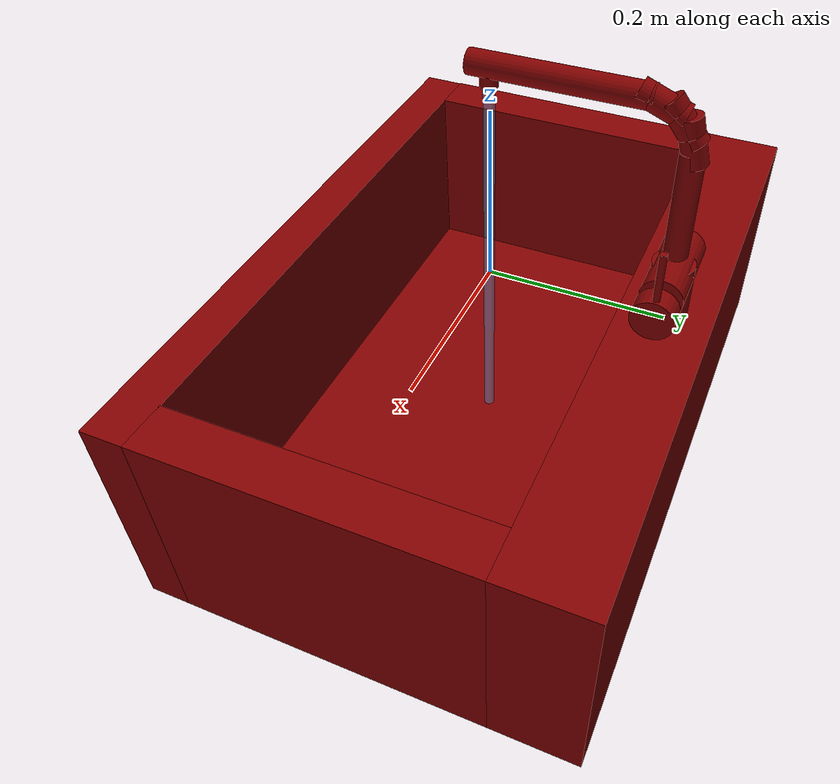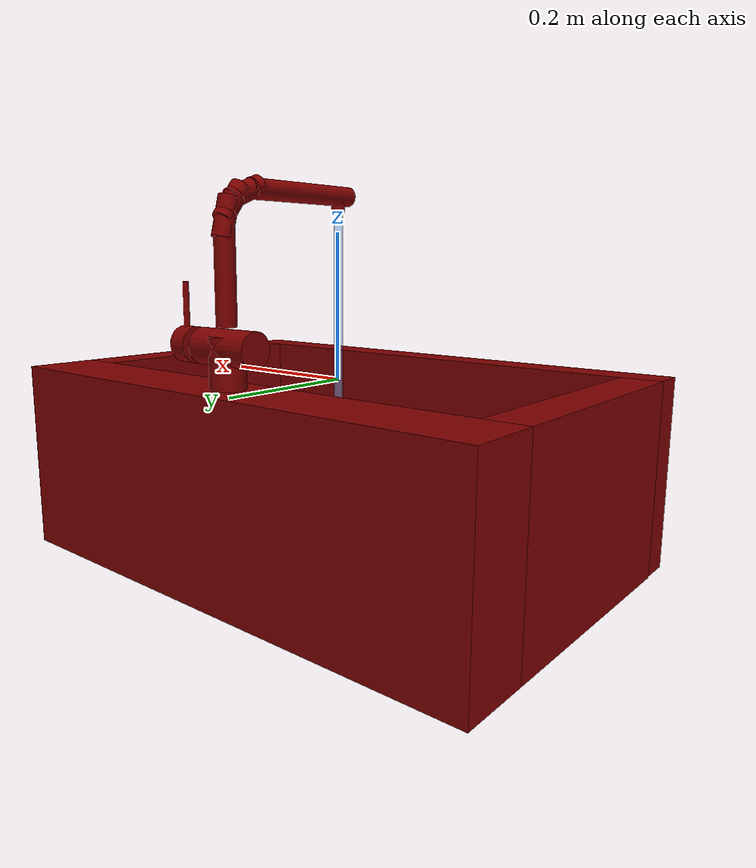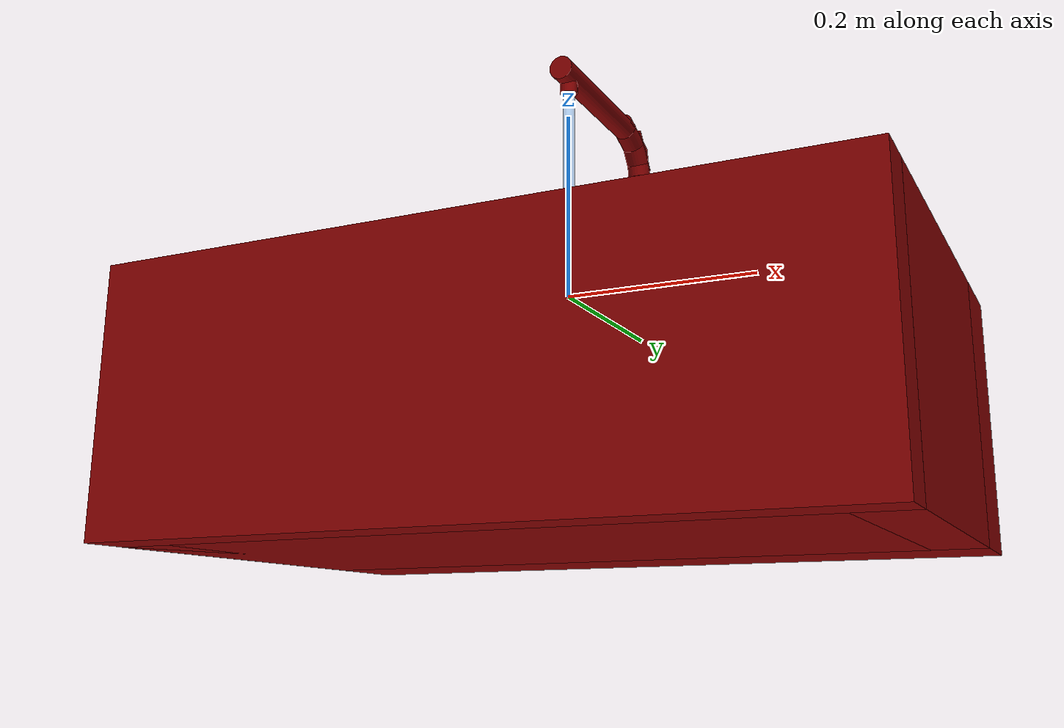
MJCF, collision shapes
<?xml version='1.0' encoding='UTF-8'?>
<mujoco model="model">
  <option timestep="0.002" gravity="0.0 0.0 -9.81"/>
  <compiler angle="radian"/>
  <asset>
    <mesh file="visuals/handle.obj" name="handle_vis"/>
    <mesh file="visuals/Body001.obj" name="Body001_vis"/>
    <mesh file="visuals/spout.obj" name="spout_vis"/>
    <texture file="visuals/T_BC001.png" name="Body001_material" type="2d"/>
    <material name="Body001_material" rgba="1 1 1 1.0" texture="Body001_material" shininess="0.4472135901451111" specular="1"/>
    <texture file="visuals/T_BC001.png" name="handle_material" type="2d"/>
    <material name="handle_material" rgba="1 1 1 1.0" texture="handle_material" shininess="0.4472135901451111" specular="1"/>
    <texture file="visuals/T_BC001.png" name="spout_material" type="2d"/>
    <material name="spout_material" rgba="1 1 1 1.0" texture="spout_material" shininess="0.4472135901451111" specular="1"/>
  </asset>
  <default>
    <default class="visual">
      <geom conaffinity="0" contype="0" group="1" type="mesh"/>
    </default>
    <default class="collision">
      <geom group="0" rgba="0.5 0 0 0.5" solimp="0.998 0.998 0.001" solref="0.001 2"/>
    </default>
    <default class="spawn">
      <geom group="0" rgba="1 1 1 0.5" contype="0" conaffinity="0"/>
      <site group="0" rgba="1 1 1 0.5"/>
    </default>
    <default class="region">
      <geom group="1" conaffinity="0" contype="0" rgba="0 1 0 0"/>
    </default>
  </default>
  <worldbody>
    <body>
      <body name="object">
        <geom mesh="Body001_vis" type="mesh" solimp="0.998 0.998 0.001" solref="0.001 1" friction="0.95 0.3 0.1" class="visual" material="Body001_material"/>
        <geom class="collision" type="box" pos="0.00061120 -0.22890670 -0.12269893" size="0.3741335868835449 0.024871043860912323 0.13373567163944244" quat="1.0 0.0 0.0 0.0"/>
        <geom class="collision" type="box" pos="0.00000427 0.20345906 -0.12269893" size="0.3747573494911194 0.049860287457704544 0.13373567163944244" quat="1.0 0.0 0.0 0.0"/>
        <geom class="collision" type="box" pos="-0.34692350 -0.02449246 -0.12269893" size="0.027821138501167297 0.1806069165468216 0.13373567163944244" quat="1.0 0.0 0.0 0.0"/>
        <geom class="collision" type="box" pos="0.34695294 -0.02449246 -0.12269893" size="0.027808651328086853 0.1806069165468216 0.13373567163944244" quat="1.0 0.0 0.0 0.0"/>
        <geom class="collision" type="box" pos="-0.02689746 -0.02449246 -0.23388979" size="0.3466249108314514 0.1806069165468216 0.02254481613636017" quat="1.0 0.0 0.0 0.0"/>
        <geom class="collision" type="cylinder" pos="0.00036726 0.20116485 0.04278069" size="0.02263602614402771 0.032472364604473114" quat="1.0 0.0 0.0 0.0"/>
        <geom class="collision" type="cylinder" pos="-0.00213505 0.20116485 0.06126888" size="0.02263602614402771 0.04693588986992836" quat="0.7071068286895752 -0.0 0.7071067690849304 0.0"/>
        <body name="handle">
          <joint axis="1.0 0.0 0.0" pos="0.06563651 0.20115647 0.06166259" limited="true" name="handle_temp_joint" type="hinge" range="-0.7853981633974483 0.7853981633974483" damping="0.5" frictionloss="1" armature="2"/>
          <joint axis="0.0 1.0 0.0" pos="0.06563651 0.20115647 0.06166259" limited="true" name="handle_joint" type="hinge" range="0 0.5" damping="0.5" frictionloss="1" armature="2"/>
          <geom mesh="handle_vis" type="mesh" solimp="0.998 0.998 0.001" solref="0.001 1" friction="0.95 0.3 0.1" class="visual" material="handle_material"/>
          <geom name="handle_main" class="collision" type="cylinder" pos="0.07423763 0.20167435 0.11034441" size="0.0038201643619686365 0.027743283659219742" quat="1.0 0.0 0.0 0.0"/>
          <geom class="collision" type="cylinder" pos="0.06847246 0.20116485 0.06126888" size="0.02263602614402771 0.011875688098371029" quat="0.7071068286895752 -0.0 0.7071067690849304 0.0"/>
        </body>
        <body name="spout">
          <joint axis="0.0 0.0 1.0" pos="0.00041697 0.20115916 0.16729961" limited="true" name="spout_joint" range="-1.0471975511965976 1.0471975511965976" type="hinge" damping="10"/>
          <site type="cylinder" rgba="0.5 0.75 1 0.5" size="0.006101064383983612 0.2378060519695282" pos="0.00040024 -0.00089565 -0.01125450" name="water"/>
          <geom mesh="spout_vis" type="mesh" solimp="0.998 0.998 0.001" solref="0.001 1" friction="0.95 0.3 0.1" class="visual" material="spout_material"/>
          <geom class="collision" type="cylinder" pos="0.00061748 0.20096052 0.14449674" size="0.012858516536653042 0.05865353345870972" quat="1.0 0.0 0.0 0.0"/>
          <geom class="collision" type="cylinder" pos="0.00042598 -0.00100528 0.23272023" size="0.009285930544137955 0.0064205266535282135" quat="1.0 0.0 0.0 0.0"/>
          <geom class="collision" type="cylinder" pos="0.00061748 0.19846044 0.21308295" size="0.012858516536653042 0.024497203528881073" quat="0.9920640587806702 0.12573324143886566 0.0 0.0"/>
          <geom class="collision" type="cylinder" pos="0.00061748 0.18844990 0.22989763" size="0.012858516536653042 0.024497203528881073" quat="0.9472011923789978 0.32063984870910645 0.0 0.0"/>
          <geom class="collision" type="cylinder" pos="0.00061748 0.16745245 0.24358638" size="0.012858516536653042 0.024497203528881073" quat="0.8263651132583618 0.5631347298622131 0.0 0.0"/>
          <geom class="collision" type="cylinder" pos="0.00061748 0.06914715 0.24813132" size="0.012858516536653042 0.09095170348882675" quat="0.7071067094802856 0.7071068286895752 0.0 0.0" name="spout_main"/>
        </body>
        <geom class="region" name="reg_basin" type="box" pos="0.0016593000000000024 -0.025191919999999993 -0.09573013" size="0.30364553000000005 0.16539562000000002 0.10582021999999999"/>
        <geom class="region" name="reg_main" type="box" pos="4.249999999983434e-06 -2.000000001722846e-08 -0.12390533" size="0.37575735 0.25477774 0.13661107"/>
      </body>
    </body>
  </worldbody>
  <actuator>
    <motor name="handle_joint_actuator" joint="handle_joint" gear="10"/>
    <motor name="handle_temp_joint_actuator" joint="handle_temp_joint" gear="10"/>
    <motor name="spout_joint_actuator" joint="spout_joint" gear="10"/>
  </actuator>
</mujoco>
